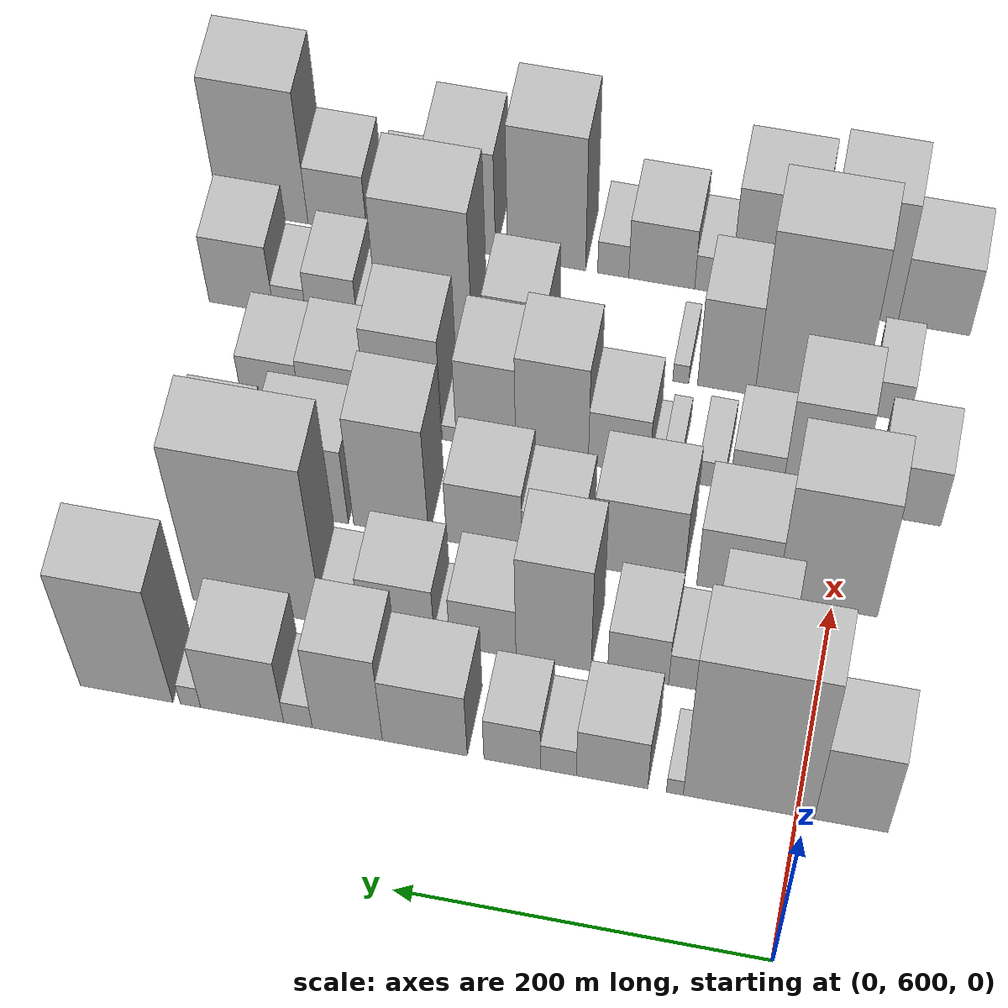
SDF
<sdf version="1.6">
 <world name="default">
  <model name="building_45">
   <static>1</static>
   <pose>100.0000 571.2916 0 0.000000 0.000000 0.000000</pose>
   <link name="link">
    <pose>0 0 52.50 0 0 0</pose>
    <collision name="collision"><geometry><box><size>40.0000 39.0825 105.0000</size></box></geometry></collision>
    <visual name="visual">
     <cast_shadows>0</cast_shadows>
     <geometry><box><size>40.0000 39.0825 105.0000</size></box></geometry>
     <material>
      <script>
       <uri>model://HANNAS_wall/materials/scripts</uri>
       <uri>model://HANNAS_wall/materials/textures</uri>
       <name>vrc/HANNAS_wall</name>
      </script>
     </material>
    </visual>
   </link>
  </model>
  <model name="building_46">
   <static>1</static>
   <pose>100.0000 625.7950 0 0.000000 0.000000 0.000000</pose>
   <link name="link">
    <pose>0 0 96.00 0 0 0</pose>
    <collision name="collision"><geometry><box><size>40.0000 69.9243 192.0000</size></box></geometry></collision>
    <visual name="visual">
     <cast_shadows>0</cast_shadows>
     <geometry><box><size>40.0000 69.9243 192.0000</size></box></geometry>
     <material>
      <script>
       <uri>model://HANNAS_wall/materials/scripts</uri>
       <uri>model://HANNAS_wall/materials/textures</uri>
       <name>vrc/HANNAS_wall</name>
      </script>
     </material>
    </visual>
   </link>
  </model>
  <model name="building_47">
   <static>1</static>
   <pose>100.0000 665.2630 0 0.000000 0.000000 0.000000</pose>
   <link name="link">
    <pose>0 0 10.50 0 0 0</pose>
    <collision name="collision"><geometry><box><size>40.0000 9.0117 21.0000</size></box></geometry></collision>
    <visual name="visual">
     <cast_shadows>0</cast_shadows>
     <geometry><box><size>40.0000 9.0117 21.0000</size></box></geometry>
     <material>
      <script>
       <uri>model://HANNAS_wall/materials/scripts</uri>
       <uri>model://HANNAS_wall/materials/textures</uri>
       <name>vrc/HANNAS_wall</name>
      </script>
     </material>
    </visual>
   </link>
  </model>
  <model name="building_48">
   <static>1</static>
   <pose>100.0000 698.9619 0 0.000000 0.000000 0.000000</pose>
   <link name="link">
    <pose>0 0 33.00 0 0 0</pose>
    <collision name="collision"><geometry><box><size>40.0000 38.3860 66.0000</size></box></geometry></collision>
    <visual name="visual">
     <cast_shadows>0</cast_shadows>
     <geometry><box><size>40.0000 38.3860 66.0000</size></box></geometry>
     <material>
      <script>
       <uri>model://HANNAS_wall/materials/scripts</uri>
       <uri>model://HANNAS_wall/materials/textures</uri>
       <name>vrc/HANNAS_wall</name>
      </script>
     </material>
    </visual>
   </link>
  </model>
  <model name="building_49">
   <static>1</static>
   <pose>100.0000 727.8852 0 0.000000 0.000000 0.000000</pose>
   <link name="link">
    <pose>0 0 18.00 0 0 0</pose>
    <collision name="collision"><geometry><box><size>40.0000 19.4607 36.0000</size></box></geometry></collision>
    <visual name="visual">
     <cast_shadows>0</cast_shadows>
     <geometry><box><size>40.0000 19.4607 36.0000</size></box></geometry>
     <material>
      <script>
       <uri>model://HANNAS_wall/materials/scripts</uri>
       <uri>model://HANNAS_wall/materials/textures</uri>
       <name>vrc/HANNAS_wall</name>
      </script>
     </material>
    </visual>
   </link>
  </model>
  <model name="building_50">
   <static>1</static>
   <pose>100.0000 752.7820 0 0.000000 0.000000 0.000000</pose>
   <link name="link">
    <pose>0 0 28.50 0 0 0</pose>
    <collision name="collision"><geometry><box><size>40.0000 30.3328 57.0000</size></box></geometry></collision>
    <visual name="visual">
     <cast_shadows>0</cast_shadows>
     <geometry><box><size>40.0000 30.3328 57.0000</size></box></geometry>
     <material>
      <script>
       <uri>model://HANNAS_wall/materials/scripts</uri>
       <uri>model://HANNAS_wall/materials/textures</uri>
       <name>vrc/HANNAS_wall</name>
      </script>
     </material>
    </visual>
   </link>
  </model>
  <model name="building_51">
   <static>1</static>
   <pose>100.0000 799.9900 0 0.000000 0.000000 0.000000</pose>
   <link name="link">
    <pose>0 0 42.00 0 0 0</pose>
    <collision name="collision"><geometry><box><size>40.0000 46.0833 84.0000</size></box></geometry></collision>
    <visual name="visual">
     <cast_shadows>0</cast_shadows>
     <geometry><box><size>40.0000 46.0833 84.0000</size></box></geometry>
     <material>
      <script>
       <uri>model://HANNAS_wall/materials/scripts</uri>
       <uri>model://HANNAS_wall/materials/textures</uri>
       <name>vrc/HANNAS_wall</name>
      </script>
     </material>
    </visual>
   </link>
  </model>
  <model name="building_52">
   <static>1</static>
   <pose>100.0000 842.1144 0 0.000000 0.000000 0.000000</pose>
   <link name="link">
    <pose>0 0 55.50 0 0 0</pose>
    <collision name="collision"><geometry><box><size>40.0000 38.1655 111.0000</size></box></geometry></collision>
    <visual name="visual">
     <cast_shadows>0</cast_shadows>
     <geometry><box><size>40.0000 38.1655 111.0000</size></box></geometry>
     <material>
      <script>
       <uri>model://HANNAS_wall/materials/scripts</uri>
       <uri>model://HANNAS_wall/materials/textures</uri>
       <name>vrc/HANNAS_wall</name>
      </script>
     </material>
    </visual>
   </link>
  </model>
  <model name="building_53">
   <static>1</static>
   <pose>100.0000 868.9809 0 0.000000 0.000000 0.000000</pose>
   <link name="link">
    <pose>0 0 15.00 0 0 0</pose>
    <collision name="collision"><geometry><box><size>40.0000 15.5673 30.0000</size></box></geometry></collision>
    <visual name="visual">
     <cast_shadows>0</cast_shadows>
     <geometry><box><size>40.0000 15.5673 30.0000</size></box></geometry>
     <material>
      <script>
       <uri>model://HANNAS_wall/materials/scripts</uri>
       <uri>model://HANNAS_wall/materials/textures</uri>
       <name>vrc/HANNAS_wall</name>
      </script>
     </material>
    </visual>
   </link>
  </model>
  <model name="building_54">
   <static>1</static>
   <pose>100.0000 899.5236 0 0.000000 0.000000 0.000000</pose>
   <link name="link">
    <pose>0 0 42.00 0 0 0</pose>
    <collision name="collision"><geometry><box><size>40.0000 45.5180 84.0000</size></box></geometry></collision>
    <visual name="visual">
     <cast_shadows>0</cast_shadows>
     <geometry><box><size>40.0000 45.5180 84.0000</size></box></geometry>
     <material>
      <script>
       <uri>model://HANNAS_wall/materials/scripts</uri>
       <uri>model://HANNAS_wall/materials/textures</uri>
       <name>vrc/HANNAS_wall</name>
      </script>
     </material>
    </visual>
   </link>
  </model>
  <model name="building_55">
   <static>1</static>
   <pose>100.0000 927.8813 0 0.000000 0.000000 0.000000</pose>
   <link name="link">
    <pose>0 0 13.50 0 0 0</pose>
    <collision name="collision"><geometry><box><size>40.0000 11.1975 27.0000</size></box></geometry></collision>
    <visual name="visual">
     <cast_shadows>0</cast_shadows>
     <geometry><box><size>40.0000 11.1975 27.0000</size></box></geometry>
     <material>
      <script>
       <uri>model://HANNAS_wall/materials/scripts</uri>
       <uri>model://HANNAS_wall/materials/textures</uri>
       <name>vrc/HANNAS_wall</name>
      </script>
     </material>
    </visual>
   </link>
  </model>
  <model name="building_56">
   <static>1</static>
   <pose>100.0000 962.9688 0 0.000000 0.000000 0.000000</pose>
   <link name="link">
    <pose>0 0 75.00 0 0 0</pose>
    <collision name="collision"><geometry><box><size>40.0000 50.9775 150.0000</size></box></geometry></collision>
    <visual name="visual">
     <cast_shadows>0</cast_shadows>
     <geometry><box><size>40.0000 50.9775 150.0000</size></box></geometry>
     <material>
      <script>
       <uri>model://HANNAS_wall/materials/scripts</uri>
       <uri>model://HANNAS_wall/materials/textures</uri>
       <name>vrc/HANNAS_wall</name>
      </script>
     </material>
    </visual>
   </link>
  </model>
  <model name="building_97">
   <static>1</static>
   <pose>160.0000 601.2486 0 0.000000 0.000000 0.000000</pose>
   <link name="link">
    <pose>0 0 25.50 0 0 0</pose>
    <collision name="collision"><geometry><box><size>40.0000 25.5039 51.0000</size></box></geometry></collision>
    <visual name="visual">
     <cast_shadows>0</cast_shadows>
     <geometry><box><size>40.0000 25.5039 51.0000</size></box></geometry>
     <material>
      <script>
       <uri>model://HANNAS_wall/materials/scripts</uri>
       <uri>model://HANNAS_wall/materials/textures</uri>
       <name>vrc/HANNAS_wall</name>
      </script>
     </material>
    </visual>
   </link>
  </model>
  <model name="building_98">
   <static>1</static>
   <pose>160.0000 637.9002 0 0.000000 0.000000 0.000000</pose>
   <link name="link">
    <pose>0 0 51.00 0 0 0</pose>
    <collision name="collision"><geometry><box><size>40.0000 39.7992 102.0000</size></box></geometry></collision>
    <visual name="visual">
     <cast_shadows>0</cast_shadows>
     <geometry><box><size>40.0000 39.7992 102.0000</size></box></geometry>
     <material>
      <script>
       <uri>model://HANNAS_wall/materials/scripts</uri>
       <uri>model://HANNAS_wall/materials/textures</uri>
       <name>vrc/HANNAS_wall</name>
      </script>
     </material>
    </visual>
   </link>
  </model>
  <model name="building_99">
   <static>1</static>
   <pose>160.0000 668.4807 0 0.000000 0.000000 0.000000</pose>
   <link name="link">
    <pose>0 0 21.00 0 0 0</pose>
    <collision name="collision"><geometry><box><size>40.0000 21.3617 42.0000</size></box></geometry></collision>
    <visual name="visual">
     <cast_shadows>0</cast_shadows>
     <geometry><box><size>40.0000 21.3617 42.0000</size></box></geometry>
     <material>
      <script>
       <uri>model://HANNAS_wall/materials/scripts</uri>
       <uri>model://HANNAS_wall/materials/textures</uri>
       <name>vrc/HANNAS_wall</name>
      </script>
     </material>
    </visual>
   </link>
  </model>
  <model name="building_100">
   <static>1</static>
   <pose>160.0000 695.7792 0 0.000000 0.000000 0.000000</pose>
   <link name="link">
    <pose>0 0 30.00 0 0 0</pose>
    <collision name="collision"><geometry><box><size>40.0000 33.2354 60.0000</size></box></geometry></collision>
    <visual name="visual">
     <cast_shadows>0</cast_shadows>
     <geometry><box><size>40.0000 33.2354 60.0000</size></box></geometry>
     <material>
      <script>
       <uri>model://HANNAS_wall/materials/scripts</uri>
       <uri>model://HANNAS_wall/materials/textures</uri>
       <name>vrc/HANNAS_wall</name>
      </script>
     </material>
    </visual>
   </link>
  </model>
  <model name="building_101">
   <static>1</static>
   <pose>160.0000 741.9157 0 0.000000 0.000000 0.000000</pose>
   <link name="link">
    <pose>0 0 66.00 0 0 0</pose>
    <collision name="collision"><geometry><box><size>40.0000 41.0374 132.0000</size></box></geometry></collision>
    <visual name="visual">
     <cast_shadows>0</cast_shadows>
     <geometry><box><size>40.0000 41.0374 132.0000</size></box></geometry>
     <material>
      <script>
       <uri>model://HANNAS_wall/materials/scripts</uri>
       <uri>model://HANNAS_wall/materials/textures</uri>
       <name>vrc/HANNAS_wall</name>
      </script>
     </material>
    </visual>
   </link>
  </model>
  <model name="building_102">
   <static>1</static>
   <pose>160.0000 780.5821 0 0.000000 0.000000 0.000000</pose>
   <link name="link">
    <pose>0 0 31.50 0 0 0</pose>
    <collision name="collision"><geometry><box><size>40.0000 36.2956 63.0000</size></box></geometry></collision>
    <visual name="visual">
     <cast_shadows>0</cast_shadows>
     <geometry><box><size>40.0000 36.2956 63.0000</size></box></geometry>
     <material>
      <script>
       <uri>model://HANNAS_wall/materials/scripts</uri>
       <uri>model://HANNAS_wall/materials/textures</uri>
       <name>vrc/HANNAS_wall</name>
      </script>
     </material>
    </visual>
   </link>
  </model>
  <model name="building_103">
   <static>1</static>
   <pose>160.0000 802.8837 0 0.000000 0.000000 0.000000</pose>
   <link name="link">
    <pose>0 0 9.00 0 0 0</pose>
    <collision name="collision"><geometry><box><size>40.0000 8.3076 18.0000</size></box></geometry></collision>
    <visual name="visual">
     <cast_shadows>0</cast_shadows>
     <geometry><box><size>40.0000 8.3076 18.0000</size></box></geometry>
     <material>
      <script>
       <uri>model://HANNAS_wall/materials/scripts</uri>
       <uri>model://HANNAS_wall/materials/textures</uri>
       <name>vrc/HANNAS_wall</name>
      </script>
     </material>
    </visual>
   </link>
  </model>
  <model name="building_104">
   <static>1</static>
   <pose>160.0000 827.6056 0 0.000000 0.000000 0.000000</pose>
   <link name="link">
    <pose>0 0 34.50 0 0 0</pose>
    <collision name="collision"><geometry><box><size>40.0000 41.1360 69.0000</size></box></geometry></collision>
    <visual name="visual">
     <cast_shadows>0</cast_shadows>
     <geometry><box><size>40.0000 41.1360 69.0000</size></box></geometry>
     <material>
      <script>
       <uri>model://HANNAS_wall/materials/scripts</uri>
       <uri>model://HANNAS_wall/materials/textures</uri>
       <name>vrc/HANNAS_wall</name>
      </script>
     </material>
    </visual>
   </link>
  </model>
  <model name="building_105">
   <static>1</static>
   <pose>160.0000 858.6126 0 0.000000 0.000000 0.000000</pose>
   <link name="link">
    <pose>0 0 19.50 0 0 0</pose>
    <collision name="collision"><geometry><box><size>40.0000 20.8781 39.0000</size></box></geometry></collision>
    <visual name="visual">
     <cast_shadows>0</cast_shadows>
     <geometry><box><size>40.0000 20.8781 39.0000</size></box></geometry>
     <material>
      <script>
       <uri>model://HANNAS_wall/materials/scripts</uri>
       <uri>model://HANNAS_wall/materials/textures</uri>
       <name>vrc/HANNAS_wall</name>
      </script>
     </material>
    </visual>
   </link>
  </model>
  <model name="building_106">
   <static>1</static>
   <pose>160.0000 904.9557 0 0.000000 0.000000 0.000000</pose>
   <link name="link">
    <pose>0 0 96.00 0 0 0</pose>
    <collision name="collision"><geometry><box><size>40.0000 71.8081 192.0000</size></box></geometry></collision>
    <visual name="visual">
     <cast_shadows>0</cast_shadows>
     <geometry><box><size>40.0000 71.8081 192.0000</size></box></geometry>
     <material>
      <script>
       <uri>model://HANNAS_wall/materials/scripts</uri>
       <uri>model://HANNAS_wall/materials/textures</uri>
       <name>vrc/HANNAS_wall</name>
      </script>
     </material>
    </visual>
   </link>
  </model>
  <model name="building_154">
   <static>1</static>
   <pose>220.0000 602.4812 0 0.000000 0.000000 0.000000</pose>
   <link name="link">
    <pose>0 0 72.00 0 0 0</pose>
    <collision name="collision"><geometry><box><size>40.0000 55.2098 144.0000</size></box></geometry></collision>
    <visual name="visual">
     <cast_shadows>0</cast_shadows>
     <geometry><box><size>40.0000 55.2098 144.0000</size></box></geometry>
     <material>
      <script>
       <uri>model://HANNAS_wall/materials/scripts</uri>
       <uri>model://HANNAS_wall/materials/textures</uri>
       <name>vrc/HANNAS_wall</name>
      </script>
     </material>
    </visual>
   </link>
  </model>
  <model name="building_155">
   <static>1</static>
   <pose>220.0000 652.1125 0 0.000000 0.000000 0.000000</pose>
   <link name="link">
    <pose>0 0 37.50 0 0 0</pose>
    <collision name="collision"><geometry><box><size>40.0000 44.0528 75.0000</size></box></geometry></collision>
    <visual name="visual">
     <cast_shadows>0</cast_shadows>
     <geometry><box><size>40.0000 44.0528 75.0000</size></box></geometry>
     <material>
      <script>
       <uri>model://HANNAS_wall/materials/scripts</uri>
       <uri>model://HANNAS_wall/materials/textures</uri>
       <name>vrc/HANNAS_wall</name>
      </script>
     </material>
    </visual>
   </link>
  </model>
  <model name="building_156">
   <static>1</static>
   <pose>220.0000 706.1811 0 0.000000 0.000000 0.000000</pose>
   <link name="link">
    <pose>0 0 45.00 0 0 0</pose>
    <collision name="collision"><geometry><box><size>40.0000 50.0845 90.0000</size></box></geometry></collision>
    <visual name="visual">
     <cast_shadows>0</cast_shadows>
     <geometry><box><size>40.0000 50.0845 90.0000</size></box></geometry>
     <material>
      <script>
       <uri>model://HANNAS_wall/materials/scripts</uri>
       <uri>model://HANNAS_wall/materials/textures</uri>
       <name>vrc/HANNAS_wall</name>
      </script>
     </material>
    </visual>
   </link>
  </model>
  <model name="building_157">
   <static>1</static>
   <pose>220.0000 754.0971 0 0.000000 0.000000 0.000000</pose>
   <link name="link">
    <pose>0 0 28.50 0 0 0</pose>
    <collision name="collision"><geometry><box><size>40.0000 33.7475 57.0000</size></box></geometry></collision>
    <visual name="visual">
     <cast_shadows>0</cast_shadows>
     <geometry><box><size>40.0000 33.7475 57.0000</size></box></geometry>
     <material>
      <script>
       <uri>model://HANNAS_wall/materials/scripts</uri>
       <uri>model://HANNAS_wall/materials/textures</uri>
       <name>vrc/HANNAS_wall</name>
      </script>
     </material>
    </visual>
   </link>
  </model>
  <model name="building_158">
   <static>1</static>
   <pose>220.0000 791.8746 0 0.000000 0.000000 0.000000</pose>
   <link name="link">
    <pose>0 0 37.50 0 0 0</pose>
    <collision name="collision"><geometry><box><size>40.0000 41.8076 75.0000</size></box></geometry></collision>
    <visual name="visual">
     <cast_shadows>0</cast_shadows>
     <geometry><box><size>40.0000 41.8076 75.0000</size></box></geometry>
     <material>
      <script>
       <uri>model://HANNAS_wall/materials/scripts</uri>
       <uri>model://HANNAS_wall/materials/textures</uri>
       <name>vrc/HANNAS_wall</name>
      </script>
     </material>
    </visual>
   </link>
  </model>
  <model name="building_159">
   <static>1</static>
   <pose>220.0000 843.8169 0 0.000000 0.000000 0.000000</pose>
   <link name="link">
    <pose>0 0 66.00 0 0 0</pose>
    <collision name="collision"><geometry><box><size>40.0000 42.0770 132.0000</size></box></geometry></collision>
    <visual name="visual">
     <cast_shadows>0</cast_shadows>
     <geometry><box><size>40.0000 42.0770 132.0000</size></box></geometry>
     <material>
      <script>
       <uri>model://HANNAS_wall/materials/scripts</uri>
       <uri>model://HANNAS_wall/materials/textures</uri>
       <name>vrc/HANNAS_wall</name>
      </script>
     </material>
    </visual>
   </link>
  </model>
  <model name="building_160">
   <static>1</static>
   <pose>220.0000 891.6482 0 0.000000 0.000000 0.000000</pose>
   <link name="link">
    <pose>0 0 45.00 0 0 0</pose>
    <collision name="collision"><geometry><box><size>40.0000 47.5855 90.0000</size></box></geometry></collision>
    <visual name="visual">
     <cast_shadows>0</cast_shadows>
     <geometry><box><size>40.0000 47.5855 90.0000</size></box></geometry>
     <material>
      <script>
       <uri>model://HANNAS_wall/materials/scripts</uri>
       <uri>model://HANNAS_wall/materials/textures</uri>
       <name>vrc/HANNAS_wall</name>
      </script>
     </material>
    </visual>
   </link>
  </model>
  <model name="building_161">
   <static>1</static>
   <pose>220.0000 941.8336 0 0.000000 0.000000 0.000000</pose>
   <link name="link">
    <pose>0 0 34.50 0 0 0</pose>
    <collision name="collision"><geometry><box><size>40.0000 38.7853 69.0000</size></box></geometry></collision>
    <visual name="visual">
     <cast_shadows>0</cast_shadows>
     <geometry><box><size>40.0000 38.7853 69.0000</size></box></geometry>
     <material>
      <script>
       <uri>model://HANNAS_wall/materials/scripts</uri>
       <uri>model://HANNAS_wall/materials/textures</uri>
       <name>vrc/HANNAS_wall</name>
      </script>
     </material>
    </visual>
   </link>
  </model>
  <model name="building_204">
   <static>1</static>
   <pose>280.0000 567.4419 0 0.000000 0.000000 0.000000</pose>
   <link name="link">
    <pose>0 0 33.00 0 0 0</pose>
    <collision name="collision"><geometry><box><size>40.0000 37.6071 66.0000</size></box></geometry></collision>
    <visual name="visual">
     <cast_shadows>0</cast_shadows>
     <geometry><box><size>40.0000 37.6071 66.0000</size></box></geometry>
     <material>
      <script>
       <uri>model://HANNAS_wall/materials/scripts</uri>
       <uri>model://HANNAS_wall/materials/textures</uri>
       <name>vrc/HANNAS_wall</name>
      </script>
     </material>
    </visual>
   </link>
  </model>
  <model name="building_205">
   <static>1</static>
   <pose>280.0000 616.2024 0 0.000000 0.000000 0.000000</pose>
   <link name="link">
    <pose>0 0 60.00 0 0 0</pose>
    <collision name="collision"><geometry><box><size>40.0000 41.9139 120.0000</size></box></geometry></collision>
    <visual name="visual">
     <cast_shadows>0</cast_shadows>
     <geometry><box><size>40.0000 41.9139 120.0000</size></box></geometry>
     <material>
      <script>
       <uri>model://HANNAS_wall/materials/scripts</uri>
       <uri>model://HANNAS_wall/materials/textures</uri>
       <name>vrc/HANNAS_wall</name>
      </script>
     </material>
    </visual>
   </link>
  </model>
  <model name="building_206">
   <static>1</static>
   <pose>280.0000 651.5896 0 0.000000 0.000000 0.000000</pose>
   <link name="link">
    <pose>0 0 25.50 0 0 0</pose>
    <collision name="collision"><geometry><box><size>40.0000 28.8606 51.0000</size></box></geometry></collision>
    <visual name="visual">
     <cast_shadows>0</cast_shadows>
     <geometry><box><size>40.0000 28.8606 51.0000</size></box></geometry>
     <material>
      <script>
       <uri>model://HANNAS_wall/materials/scripts</uri>
       <uri>model://HANNAS_wall/materials/textures</uri>
       <name>vrc/HANNAS_wall</name>
      </script>
     </material>
    </visual>
   </link>
  </model>
  <model name="building_207">
   <static>1</static>
   <pose>280.0000 676.5777 0 0.000000 0.000000 0.000000</pose>
   <link name="link">
    <pose>0 0 15.00 0 0 0</pose>
    <collision name="collision"><geometry><box><size>40.0000 15.1154 30.0000</size></box></geometry></collision>
    <visual name="visual">
     <cast_shadows>0</cast_shadows>
     <geometry><box><size>40.0000 15.1154 30.0000</size></box></geometry>
     <material>
      <script>
       <uri>model://HANNAS_wall/materials/scripts</uri>
       <uri>model://HANNAS_wall/materials/textures</uri>
       <name>vrc/HANNAS_wall</name>
      </script>
     </material>
    </visual>
   </link>
  </model>
  <model name="building_208">
   <static>1</static>
   <pose>280.0000 699.2452 0 0.000000 0.000000 0.000000</pose>
   <link name="link">
    <pose>0 0 12.00 0 0 0</pose>
    <collision name="collision"><geometry><box><size>40.0000 10.2197 24.0000</size></box></geometry></collision>
    <visual name="visual">
     <cast_shadows>0</cast_shadows>
     <geometry><box><size>40.0000 10.2197 24.0000</size></box></geometry>
     <material>
      <script>
       <uri>model://HANNAS_wall/materials/scripts</uri>
       <uri>model://HANNAS_wall/materials/textures</uri>
       <name>vrc/HANNAS_wall</name>
      </script>
     </material>
    </visual>
   </link>
  </model>
  <model name="building_209">
   <static>1</static>
   <pose>280.0000 707.6590 0 0.000000 0.000000 0.000000</pose>
   <link name="link">
    <pose>0 0 7.50 0 0 0</pose>
    <collision name="collision"><geometry><box><size>40.0000 6.6077 15.0000</size></box></geometry></collision>
    <visual name="visual">
     <cast_shadows>0</cast_shadows>
     <geometry><box><size>40.0000 6.6077 15.0000</size></box></geometry>
     <material>
      <script>
       <uri>model://HANNAS_wall/materials/scripts</uri>
       <uri>model://HANNAS_wall/materials/textures</uri>
       <name>vrc/HANNAS_wall</name>
      </script>
     </material>
    </visual>
   </link>
  </model>
  <model name="building_210">
   <static>1</static>
   <pose>280.0000 728.1247 0 0.000000 0.000000 0.000000</pose>
   <link name="link">
    <pose>0 0 33.00 0 0 0</pose>
    <collision name="collision"><geometry><box><size>40.0000 34.3238 66.0000</size></box></geometry></collision>
    <visual name="visual">
     <cast_shadows>0</cast_shadows>
     <geometry><box><size>40.0000 34.3238 66.0000</size></box></geometry>
     <material>
      <script>
       <uri>model://HANNAS_wall/materials/scripts</uri>
       <uri>model://HANNAS_wall/materials/textures</uri>
       <name>vrc/HANNAS_wall</name>
      </script>
     </material>
    </visual>
   </link>
  </model>
  <model name="building_211">
   <static>1</static>
   <pose>280.0000 765.7247 0 0.000000 0.000000 0.000000</pose>
   <link name="link">
    <pose>0 0 57.00 0 0 0</pose>
    <collision name="collision"><geometry><box><size>40.0000 40.8761 114.0000</size></box></geometry></collision>
    <visual name="visual">
     <cast_shadows>0</cast_shadows>
     <geometry><box><size>40.0000 40.8761 114.0000</size></box></geometry>
     <material>
      <script>
       <uri>model://HANNAS_wall/materials/scripts</uri>
       <uri>model://HANNAS_wall/materials/textures</uri>
       <name>vrc/HANNAS_wall</name>
      </script>
     </material>
    </visual>
   </link>
  </model>
  <model name="building_212">
   <static>1</static>
   <pose>280.0000 802.9377 0 0.000000 0.000000 0.000000</pose>
   <link name="link">
    <pose>0 0 49.50 0 0 0</pose>
    <collision name="collision"><geometry><box><size>40.0000 33.5498 99.0000</size></box></geometry></collision>
    <visual name="visual">
     <cast_shadows>0</cast_shadows>
     <geometry><box><size>40.0000 33.5498 99.0000</size></box></geometry>
     <material>
      <script>
       <uri>model://HANNAS_wall/materials/scripts</uri>
       <uri>model://HANNAS_wall/materials/textures</uri>
       <name>vrc/HANNAS_wall</name>
      </script>
     </material>
    </visual>
   </link>
  </model>
  <model name="building_213">
   <static>1</static>
   <pose>280.0000 823.6932 0 0.000000 0.000000 0.000000</pose>
   <link name="link">
    <pose>0 0 9.00 0 0 0</pose>
    <collision name="collision"><geometry><box><size>40.0000 7.9612 18.0000</size></box></geometry></collision>
    <visual name="visual">
     <cast_shadows>0</cast_shadows>
     <geometry><box><size>40.0000 7.9612 18.0000</size></box></geometry>
     <material>
      <script>
       <uri>model://HANNAS_wall/materials/scripts</uri>
       <uri>model://HANNAS_wall/materials/textures</uri>
       <name>vrc/HANNAS_wall</name>
      </script>
     </material>
    </visual>
   </link>
  </model>
  <model name="building_214">
   <static>1</static>
   <pose>280.0000 848.8533 0 0.000000 0.000000 0.000000</pose>
   <link name="link">
    <pose>0 0 58.50 0 0 0</pose>
    <collision name="collision"><geometry><box><size>40.0000 42.3589 117.0000</size></box></geometry></collision>
    <visual name="visual">
     <cast_shadows>0</cast_shadows>
     <geometry><box><size>40.0000 42.3589 117.0000</size></box></geometry>
     <material>
      <script>
       <uri>model://HANNAS_wall/materials/scripts</uri>
       <uri>model://HANNAS_wall/materials/textures</uri>
       <name>vrc/HANNAS_wall</name>
      </script>
     </material>
    </visual>
   </link>
  </model>
  <model name="building_215">
   <static>1</static>
   <pose>280.0000 888.9170 0 0.000000 0.000000 0.000000</pose>
   <link name="link">
    <pose>0 0 33.00 0 0 0</pose>
    <collision name="collision"><geometry><box><size>40.0000 37.7685 66.0000</size></box></geometry></collision>
    <visual name="visual">
     <cast_shadows>0</cast_shadows>
     <geometry><box><size>40.0000 37.7685 66.0000</size></box></geometry>
     <material>
      <script>
       <uri>model://HANNAS_wall/materials/scripts</uri>
       <uri>model://HANNAS_wall/materials/textures</uri>
       <name>vrc/HANNAS_wall</name>
      </script>
     </material>
    </visual>
   </link>
  </model>
  <model name="building_216">
   <static>1</static>
   <pose>280.0000 924.5194 0 0.000000 0.000000 0.000000</pose>
   <link name="link">
    <pose>0 0 30.00 0 0 0</pose>
    <collision name="collision"><geometry><box><size>40.0000 33.4365 60.0000</size></box></geometry></collision>
    <visual name="visual">
     <cast_shadows>0</cast_shadows>
     <geometry><box><size>40.0000 33.4365 60.0000</size></box></geometry>
     <material>
      <script>
       <uri>model://HANNAS_wall/materials/scripts</uri>
       <uri>model://HANNAS_wall/materials/textures</uri>
       <name>vrc/HANNAS_wall</name>
      </script>
     </material>
    </visual>
   </link>
  </model>
  <model name="building_261">
   <static>1</static>
   <pose>340.0000 585.8009 0 0.000000 0.000000 0.000000</pose>
   <link name="link">
    <pose>0 0 21.00 0 0 0</pose>
    <collision name="collision"><geometry><box><size>40.0000 22.3753 42.0000</size></box></geometry></collision>
    <visual name="visual">
     <cast_shadows>0</cast_shadows>
     <geometry><box><size>40.0000 22.3753 42.0000</size></box></geometry>
     <material>
      <script>
       <uri>model://HANNAS_wall/materials/scripts</uri>
       <uri>model://HANNAS_wall/materials/textures</uri>
       <name>vrc/HANNAS_wall</name>
      </script>
     </material>
    </visual>
   </link>
  </model>
  <model name="building_262">
   <static>1</static>
   <pose>340.0000 631.8751 0 0.000000 0.000000 0.000000</pose>
   <link name="link">
    <pose>0 0 93.00 0 0 0</pose>
    <collision name="collision"><geometry><box><size>40.0000 59.7729 186.0000</size></box></geometry></collision>
    <visual name="visual">
     <cast_shadows>0</cast_shadows>
     <geometry><box><size>40.0000 59.7729 186.0000</size></box></geometry>
     <material>
      <script>
       <uri>model://HANNAS_wall/materials/scripts</uri>
       <uri>model://HANNAS_wall/materials/textures</uri>
       <name>vrc/HANNAS_wall</name>
      </script>
     </material>
    </visual>
   </link>
  </model>
  <model name="building_263">
   <static>1</static>
   <pose>340.0000 677.9982 0 0.000000 0.000000 0.000000</pose>
   <link name="link">
    <pose>0 0 51.00 0 0 0</pose>
    <collision name="collision"><geometry><box><size>40.0000 32.4734 102.0000</size></box></geometry></collision>
    <visual name="visual">
     <cast_shadows>0</cast_shadows>
     <geometry><box><size>40.0000 32.4734 102.0000</size></box></geometry>
     <material>
      <script>
       <uri>model://HANNAS_wall/materials/scripts</uri>
       <uri>model://HANNAS_wall/materials/textures</uri>
       <name>vrc/HANNAS_wall</name>
      </script>
     </material>
    </visual>
   </link>
  </model>
  <model name="building_264">
   <static>1</static>
   <pose>340.0000 703.7449 0 0.000000 0.000000 0.000000</pose>
   <link name="link">
    <pose>0 0 10.50 0 0 0</pose>
    <collision name="collision"><geometry><box><size>40.0000 9.0198 21.0000</size></box></geometry></collision>
    <visual name="visual">
     <cast_shadows>0</cast_shadows>
     <geometry><box><size>40.0000 9.0198 21.0000</size></box></geometry>
     <material>
      <script>
       <uri>model://HANNAS_wall/materials/scripts</uri>
       <uri>model://HANNAS_wall/materials/textures</uri>
       <name>vrc/HANNAS_wall</name>
      </script>
     </material>
    </visual>
   </link>
  </model>
  <model name="building_265">
   <static>1</static>
   <pose>340.0000 798.4183 0 0.000000 0.000000 0.000000</pose>
   <link name="link">
    <pose>0 0 31.50 0 0 0</pose>
    <collision name="collision"><geometry><box><size>40.0000 36.7757 63.0000</size></box></geometry></collision>
    <visual name="visual">
     <cast_shadows>0</cast_shadows>
     <geometry><box><size>40.0000 36.7757 63.0000</size></box></geometry>
     <material>
      <script>
       <uri>model://HANNAS_wall/materials/scripts</uri>
       <uri>model://HANNAS_wall/materials/textures</uri>
       <name>vrc/HANNAS_wall</name>
      </script>
     </material>
    </visual>
   </link>
  </model>
  <model name="building_266">
   <static>1</static>
   <pose>340.0000 849.7677 0 0.000000 0.000000 0.000000</pose>
   <link name="link">
    <pose>0 0 75.00 0 0 0</pose>
    <collision name="collision"><geometry><box><size>40.0000 53.9230 150.0000</size></box></geometry></collision>
    <visual name="visual">
     <cast_shadows>0</cast_shadows>
     <geometry><box><size>40.0000 53.9230 150.0000</size></box></geometry>
     <material>
      <script>
       <uri>model://HANNAS_wall/materials/scripts</uri>
       <uri>model://HANNAS_wall/materials/textures</uri>
       <name>vrc/HANNAS_wall</name>
      </script>
     </material>
    </visual>
   </link>
  </model>
  <model name="building_267">
   <static>1</static>
   <pose>340.0000 882.7776 0 0.000000 0.000000 0.000000</pose>
   <link name="link">
    <pose>0 0 13.50 0 0 0</pose>
    <collision name="collision"><geometry><box><size>40.0000 12.0967 27.0000</size></box></geometry></collision>
    <visual name="visual">
     <cast_shadows>0</cast_shadows>
     <geometry><box><size>40.0000 12.0967 27.0000</size></box></geometry>
     <material>
      <script>
       <uri>model://HANNAS_wall/materials/scripts</uri>
       <uri>model://HANNAS_wall/materials/textures</uri>
       <name>vrc/HANNAS_wall</name>
      </script>
     </material>
    </visual>
   </link>
  </model>
  <model name="building_268">
   <static>1</static>
   <pose>340.0000 903.6438 0 0.000000 0.000000 0.000000</pose>
   <link name="link">
    <pose>0 0 27.00 0 0 0</pose>
    <collision name="collision"><geometry><box><size>40.0000 29.6359 54.0000</size></box></geometry></collision>
    <visual name="visual">
     <cast_shadows>0</cast_shadows>
     <geometry><box><size>40.0000 29.6359 54.0000</size></box></geometry>
     <material>
      <script>
       <uri>model://HANNAS_wall/materials/scripts</uri>
       <uri>model://HANNAS_wall/materials/textures</uri>
       <name>vrc/HANNAS_wall</name>
      </script>
     </material>
    </visual>
   </link>
  </model>
  <model name="building_269">
   <static>1</static>
   <pose>340.0000 927.9129 0 0.000000 0.000000 0.000000</pose>
   <link name="link">
    <pose>0 0 16.50 0 0 0</pose>
    <collision name="collision"><geometry><box><size>40.0000 18.9023 33.0000</size></box></geometry></collision>
    <visual name="visual">
     <cast_shadows>0</cast_shadows>
     <geometry><box><size>40.0000 18.9023 33.0000</size></box></geometry>
     <material>
      <script>
       <uri>model://HANNAS_wall/materials/scripts</uri>
       <uri>model://HANNAS_wall/materials/textures</uri>
       <name>vrc/HANNAS_wall</name>
      </script>
     </material>
    </visual>
   </link>
  </model>
  <model name="building_270">
   <static>1</static>
   <pose>340.0000 956.1462 0 0.000000 0.000000 0.000000</pose>
   <link name="link">
    <pose>0 0 37.50 0 0 0</pose>
    <collision name="collision"><geometry><box><size>40.0000 37.5642 75.0000</size></box></geometry></collision>
    <visual name="visual">
     <cast_shadows>0</cast_shadows>
     <geometry><box><size>40.0000 37.5642 75.0000</size></box></geometry>
     <material>
      <script>
       <uri>model://HANNAS_wall/materials/scripts</uri>
       <uri>model://HANNAS_wall/materials/textures</uri>
       <name>vrc/HANNAS_wall</name>
      </script>
     </material>
    </visual>
   </link>
  </model>
  <model name="building_313">
   <static>1</static>
   <pose>400.0000 569.1471 0 0.000000 0.000000 0.000000</pose>
   <link name="link">
    <pose>0 0 37.50 0 0 0</pose>
    <collision name="collision"><geometry><box><size>40.0000 41.1120 75.0000</size></box></geometry></collision>
    <visual name="visual">
     <cast_shadows>0</cast_shadows>
     <geometry><box><size>40.0000 41.1120 75.0000</size></box></geometry>
     <material>
      <script>
       <uri>model://HANNAS_wall/materials/scripts</uri>
       <uri>model://HANNAS_wall/materials/textures</uri>
       <name>vrc/HANNAS_wall</name>
      </script>
     </material>
    </visual>
   </link>
  </model>
  <model name="building_314">
   <static>1</static>
   <pose>400.0000 611.8629 0 0.000000 0.000000 0.000000</pose>
   <link name="link">
    <pose>0 0 66.00 0 0 0</pose>
    <collision name="collision"><geometry><box><size>40.0000 44.3196 132.0000</size></box></geometry></collision>
    <visual name="visual">
     <cast_shadows>0</cast_shadows>
     <geometry><box><size>40.0000 44.3196 132.0000</size></box></geometry>
     <material>
      <script>
       <uri>model://HANNAS_wall/materials/scripts</uri>
       <uri>model://HANNAS_wall/materials/textures</uri>
       <name>vrc/HANNAS_wall</name>
      </script>
     </material>
    </visual>
   </link>
  </model>
  <model name="building_315">
   <static>1</static>
   <pose>400.0000 662.4953 0 0.000000 0.000000 0.000000</pose>
   <link name="link">
    <pose>0 0 60.00 0 0 0</pose>
    <collision name="collision"><geometry><box><size>40.0000 46.9451 120.0000</size></box></geometry></collision>
    <visual name="visual">
     <cast_shadows>0</cast_shadows>
     <geometry><box><size>40.0000 46.9451 120.0000</size></box></geometry>
     <material>
      <script>
       <uri>model://HANNAS_wall/materials/scripts</uri>
       <uri>model://HANNAS_wall/materials/textures</uri>
       <name>vrc/HANNAS_wall</name>
      </script>
     </material>
    </visual>
   </link>
  </model>
  <model name="building_316">
   <static>1</static>
   <pose>400.0000 696.0591 0 0.000000 0.000000 0.000000</pose>
   <link name="link">
    <pose>0 0 19.50 0 0 0</pose>
    <collision name="collision"><geometry><box><size>40.0000 20.1827 39.0000</size></box></geometry></collision>
    <visual name="visual">
     <cast_shadows>0</cast_shadows>
     <geometry><box><size>40.0000 20.1827 39.0000</size></box></geometry>
     <material>
      <script>
       <uri>model://HANNAS_wall/materials/scripts</uri>
       <uri>model://HANNAS_wall/materials/textures</uri>
       <name>vrc/HANNAS_wall</name>
      </script>
     </material>
    </visual>
   </link>
  </model>
  <model name="building_317">
   <static>1</static>
   <pose>400.0000 725.1546 0 0.000000 0.000000 0.000000</pose>
   <link name="link">
    <pose>0 0 33.00 0 0 0</pose>
    <collision name="collision"><geometry><box><size>40.0000 38.0082 66.0000</size></box></geometry></collision>
    <visual name="visual">
     <cast_shadows>0</cast_shadows>
     <geometry><box><size>40.0000 38.0082 66.0000</size></box></geometry>
     <material>
      <script>
       <uri>model://HANNAS_wall/materials/scripts</uri>
       <uri>model://HANNAS_wall/materials/textures</uri>
       <name>vrc/HANNAS_wall</name>
      </script>
     </material>
    </visual>
   </link>
  </model>
  <model name="building_318">
   <static>1</static>
   <pose>400.0000 753.1643 0 0.000000 0.000000 0.000000</pose>
   <link name="link">
    <pose>0 0 18.00 0 0 0</pose>
    <collision name="collision"><geometry><box><size>40.0000 18.0113 36.0000</size></box></geometry></collision>
    <visual name="visual">
     <cast_shadows>0</cast_shadows>
     <geometry><box><size>40.0000 18.0113 36.0000</size></box></geometry>
     <material>
      <script>
       <uri>model://HANNAS_wall/materials/scripts</uri>
       <uri>model://HANNAS_wall/materials/textures</uri>
       <name>vrc/HANNAS_wall</name>
      </script>
     </material>
    </visual>
   </link>
  </model>
  <model name="building_319">
   <static>1</static>
   <pose>400.0000 791.7676 0 0.000000 0.000000 0.000000</pose>
   <link name="link">
    <pose>0 0 72.00 0 0 0</pose>
    <collision name="collision"><geometry><box><size>40.0000 45.1953 144.0000</size></box></geometry></collision>
    <visual name="visual">
     <cast_shadows>0</cast_shadows>
     <geometry><box><size>40.0000 45.1953 144.0000</size></box></geometry>
     <material>
      <script>
       <uri>model://HANNAS_wall/materials/scripts</uri>
       <uri>model://HANNAS_wall/materials/textures</uri>
       <name>vrc/HANNAS_wall</name>
      </script>
     </material>
    </visual>
   </link>
  </model>
  <model name="building_320">
   <static>1</static>
   <pose>400.0000 840.9407 0 0.000000 0.000000 0.000000</pose>
   <link name="link">
    <pose>0 0 55.50 0 0 0</pose>
    <collision name="collision"><geometry><box><size>40.0000 39.1509 111.0000</size></box></geometry></collision>
    <visual name="visual">
     <cast_shadows>0</cast_shadows>
     <geometry><box><size>40.0000 39.1509 111.0000</size></box></geometry>
     <material>
      <script>
       <uri>model://HANNAS_wall/materials/scripts</uri>
       <uri>model://HANNAS_wall/materials/textures</uri>
       <name>vrc/HANNAS_wall</name>
      </script>
     </material>
    </visual>
   </link>
  </model>
  <model name="building_321">
   <static>1</static>
   <pose>400.0000 875.3191 0 0.000000 0.000000 0.000000</pose>
   <link name="link">
    <pose>0 0 25.50 0 0 0</pose>
    <collision name="collision"><geometry><box><size>40.0000 29.6059 51.0000</size></box></geometry></collision>
    <visual name="visual">
     <cast_shadows>0</cast_shadows>
     <geometry><box><size>40.0000 29.6059 51.0000</size></box></geometry>
     <material>
      <script>
       <uri>model://HANNAS_wall/materials/scripts</uri>
       <uri>model://HANNAS_wall/materials/textures</uri>
       <name>vrc/HANNAS_wall</name>
      </script>
     </material>
    </visual>
   </link>
  </model>
  <model name="building_322">
   <static>1</static>
   <pose>400.0000 893.3316 0 0.000000 0.000000 0.000000</pose>
   <link name="link">
    <pose>0 0 7.50 0 0 0</pose>
    <collision name="collision"><geometry><box><size>40.0000 6.4192 15.0000</size></box></geometry></collision>
    <visual name="visual">
     <cast_shadows>0</cast_shadows>
     <geometry><box><size>40.0000 6.4192 15.0000</size></box></geometry>
     <material>
      <script>
       <uri>model://HANNAS_wall/materials/scripts</uri>
       <uri>model://HANNAS_wall/materials/textures</uri>
       <name>vrc/HANNAS_wall</name>
      </script>
     </material>
    </visual>
   </link>
  </model>
  <model name="building_323">
   <static>1</static>
   <pose>400.0000 913.8115 0 0.000000 0.000000 0.000000</pose>
   <link name="link">
    <pose>0 0 31.50 0 0 0</pose>
    <collision name="collision"><geometry><box><size>40.0000 34.5406 63.0000</size></box></geometry></collision>
    <visual name="visual">
     <cast_shadows>0</cast_shadows>
     <geometry><box><size>40.0000 34.5406 63.0000</size></box></geometry>
     <material>
      <script>
       <uri>model://HANNAS_wall/materials/scripts</uri>
       <uri>model://HANNAS_wall/materials/textures</uri>
       <name>vrc/HANNAS_wall</name>
      </script>
     </material>
    </visual>
   </link>
  </model>
  <model name="building_324">
   <static>1</static>
   <pose>400.0000 957.5170 0 0.000000 0.000000 0.000000</pose>
   <link name="link">
    <pose>0 0 70.50 0 0 0</pose>
    <collision name="collision"><geometry><box><size>40.0000 52.8704 141.0000</size></box></geometry></collision>
    <visual name="visual">
     <cast_shadows>0</cast_shadows>
     <geometry><box><size>40.0000 52.8704 141.0000</size></box></geometry>
     <material>
      <script>
       <uri>model://HANNAS_wall/materials/scripts</uri>
       <uri>model://HANNAS_wall/materials/textures</uri>
       <name>vrc/HANNAS_wall</name>
      </script>
     </material>
    </visual>
   </link>
  </model>
 </world>
</sdf>
